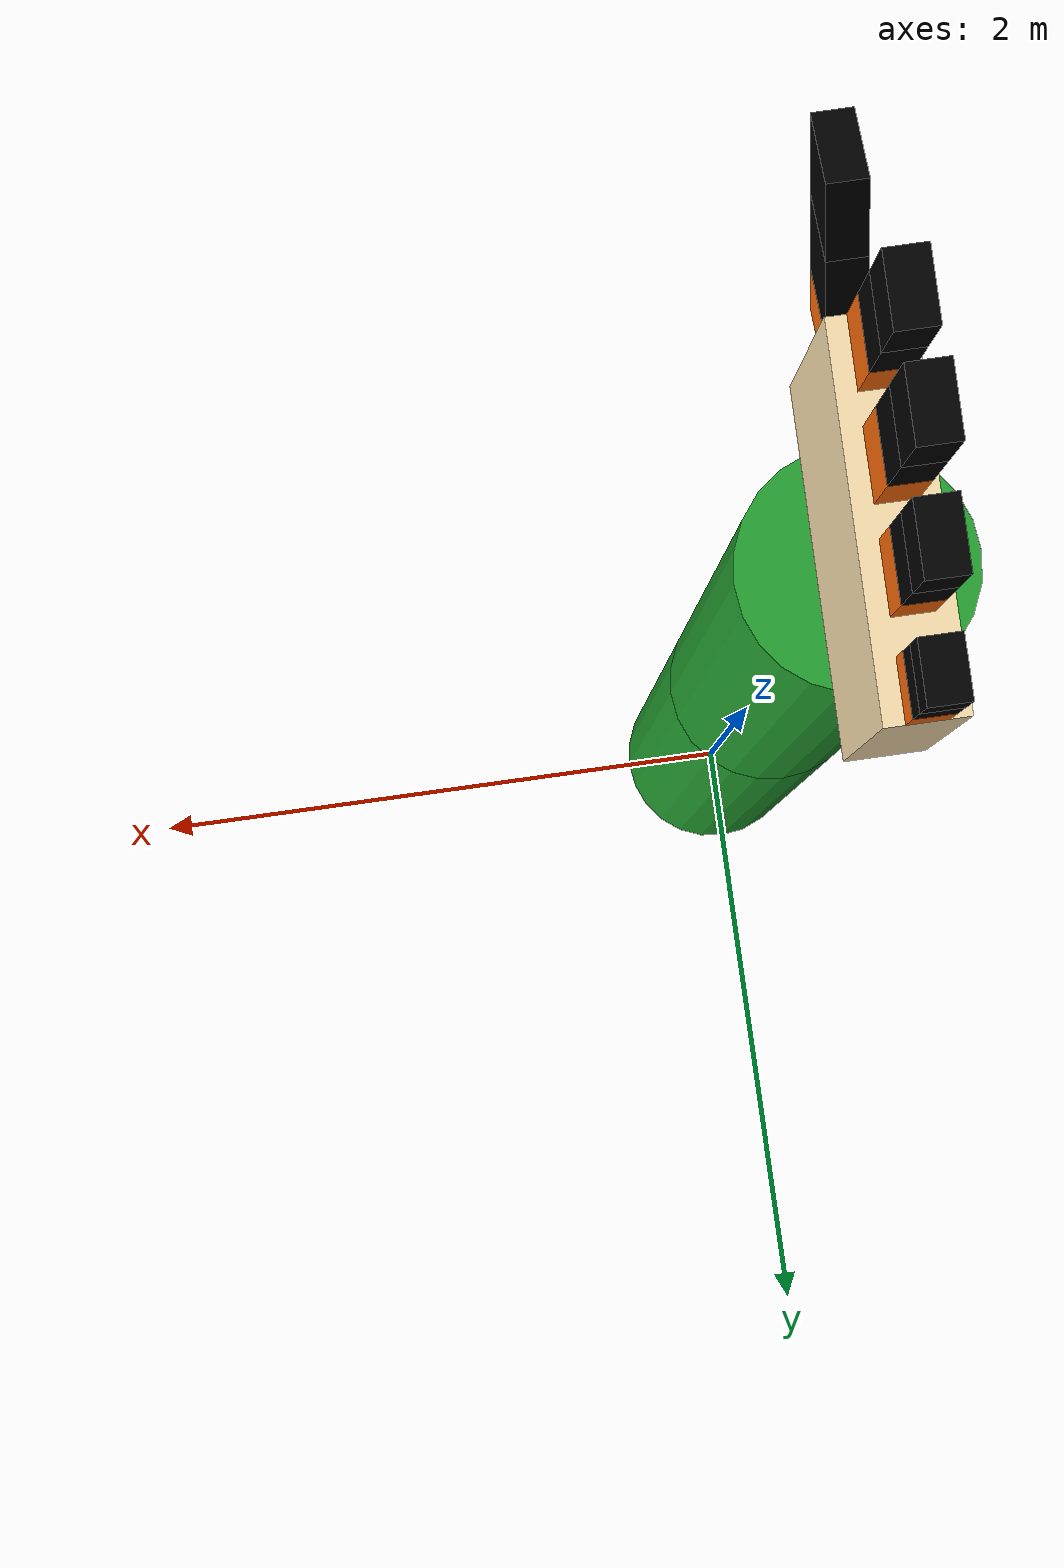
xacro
<?xml version="1.0"?>

<robot name="servo" xmlns:xacro="http://www.ros.org/wiki/xacro">

  <!-- Constants for robot dimensions -->
  <xacro:property name="PI" value="3.1415926535897931"/>
  <xacro:property name="mass_palm" value="0.2" /> <!-- arbitrary value for mass -->
  <xacro:property name="mass_hand" value="20" /> <!-- arbitrary value for mass -->
  <xacro:property name="radius" value="0.05" /> <!-- Radii of the cylinder-->
  <xacro:property name="length1" value="0.1" /> <!-- seg42 -->
  <xacro:property name="length2" value="1" /> <!-- Rotator -->
  <xacro:property name="width" value="0.1" /> <!-- width of the beam -->
  <xacro:property name="offset" value="0" /> <!-- width of the beam -->
  <xacro:property name="spacing" value="0.25" /> <!-- width of the beam -->
  <xacro:property name="leftmost" value="-0.2" /> <!-- leftmost y cordinate of palm -->
  <xacro:property name="imr_width" value="0.173" /> <!-- index middle ring width -->
  <xacro:property name="l_width" value="0.15" /> <!-- little width -->
  <xacro:property name="x_width" value="0.10" />
  <xacro:property name="hand_height" value="3" /> <!-- little width -->
  <xacro:property name="hand_radius" value="0.30" /> <!-- little width -->

  <xacro:include filename="$(find servo_description)/urdf/servo.gazebo" />
  <xacro:include filename="$(find servo_description)/urdf/materials.xacro" />

<!--======================= Right Hand =================================== -->
  <link name="Right_upper">
    <collision>
      <origin xyz="0 0 ${hand_height/2}" rpy="0 0 0"/>
      <geometry>
         <cylinder length="${hand_height}" radius="${hand_radius}"/>
      </geometry>
    </collision>

    <visual>
      <origin xyz="0 0 ${hand_height/2}" rpy="0 0 0"/>
      <geometry>
         <cylinder length="${hand_height}" radius="${hand_radius}"/>
      </geometry>
    </visual>

    <inertial>
      <origin xyz="0 0 ${hand_height/2}" rpy="0 0 0"/>
      <mass value="${mass_hand*1000}"/>
      <inertia
          ixx="${1/12*mass_hand*hand_height*hand_height}" ixy="0.0" ixz="0.0"
          iyy="${1/12*mass_hand*hand_height*hand_height}" iyz="0.0"
          izz="${mass_hand*radius*radius}"/>
    </inertial>
  </link>

  <joint name="Right_hinge" type="revolute">
    <parent link="Right_upper"/>
    <child link="Right_lower"/>
    <origin xyz="${hand_radius} 0 ${hand_height}" rpy="0 0 0"/>
    <axis xyz="0 1 0"/>
    <dynamics damping="0.9"/>
    <limit effort="1000.0" lower="0" upper="1.57" velocity="10"/>
  </joint>

  <link name="Right_lower">
     <collision>
      <origin xyz="${-hand_radius} 0 ${hand_height/2}" rpy="0 0 0"/>
      <geometry>
         <cylinder length="${hand_height}" radius="${hand_radius}"/>
      </geometry>
    </collision>

    <visual>
      <origin xyz="${-hand_radius} 0 ${hand_height/2}" rpy="0 0 0"/>
      <geometry>
         <cylinder length="${hand_height}" radius="${hand_radius}"/>
      </geometry>
    </visual>

    <inertial>
      <origin xyz="${-hand_radius} 0 ${hand_height/2}" rpy="0 0 0"/>
      <mass value="${mass_hand}"/>
      <inertia
          ixx="${1/12*mass_hand*hand_height*hand_height}" ixy="0.0" ixz="0.0"
          iyy="${1/12*mass_hand*hand_height*hand_height}" iyz="0.0"
          izz="${mass_hand*radius*radius}"/>
    </inertial>
  </link>

<!-- ===============3 axis PALM joint ======================================= -->

  <joint name="Right_palm_y" type="revolute">
    <parent link="Right_lower"/>
    <child link="Right_z_palmD"/>
    <origin xyz="${-hand_radius} ${-(leftmost+imr_width/2+spacing*3+l_width/2+leftmost)/2} ${hand_height}" rpy="0 0 0"/>
    <axis xyz="0 1 0"/>
    <dynamics damping="0.7"/>
    <limit effort="1000.0" lower="-1.57" upper="1.57" velocity="10"/>
  </joint>

  <link name="Right_z_palmD"> <!-- https://answers.ros.org/question/258420/ball-joint-in-urdf/ -->
    <inertial>
      <mass value="0.00025" />
      <inertia ixx="5.8083e-4" ixy="0" ixz="0" iyy="3.0833e-5" iyz="0" izz="5.9083e-4" />
    </inertial>
  </link>

  <joint name="Right_palm_z" type="revolute">
    <parent link="Right_z_palmD"/>
    <child link="Right_x_palmD"/>
    <axis xyz="0 0 1"/>
    <dynamics damping="0.7"/>
    <limit effort="1000.0" lower="-1.57" upper="1.57" velocity="10"/>
  </joint>

  <link name="Right_x_palmD">
    <inertial>
      <mass value="0.00025" />
      <inertia ixx="5.8083e-4" ixy="0" ixz="0" iyy="3.0833e-5" iyz="0" izz="5.9083e-4" />
    </inertial>
  </link>

  <joint name="Right_palm_x" type="revolute">
    <parent link="Right_x_palmD"/>
    <child link="Right_y_palmD"/>
    <axis xyz="1 0 0"/>
    <dynamics damping="0.7"/>
    <limit effort="1000.0" lower="-1.57" upper="1.57" velocity="10"/>
  </joint>

  <link name="Right_y_palmD">
    <inertial>
      <mass value="0.00025" />
      <inertia ixx="5.8083e-4" ixy="0" ixz="0" iyy="3.0833e-5" iyz="0" izz="5.9083e-4" />
    </inertial>
  </link>

  <joint name="Right_palm_d" type="fixed">
    <parent link="Right_y_palmD"/>
    <child link="Palm"/>
  </joint>

<!--========================PALM ========================================= -->
  <link name="Palm">
    <collision>
      <origin xyz="0 ${(leftmost+imr_width/2+spacing*3+l_width/2+leftmost)/2} 0.5" rpy="0 0 0"/>
      <geometry>
         <box size="${x_width*2} ${(leftmost+imr_width/2+spacing*3+l_width/2+leftmost)+0.4} 1"/>
      </geometry>
    </collision>

    <visual>
      <origin xyz="0 ${(leftmost+imr_width/2+spacing*3+l_width/2+leftmost)/2} 0.5" rpy="0 0 0"/>
      <geometry>
         <box size="${x_width*2} ${(leftmost+imr_width/2+spacing*3+l_width/2+leftmost)+0.4} 1"/>
      </geometry>
      <material name="skin"/>
    </visual>

    <inertial>
      <origin xyz="0 ${(leftmost+imr_width/2+spacing*3+l_width/2+leftmost)/2} 0.5" rpy="0 0 0"/>
      <mass value="${mass_palm}"/>
      <inertia
          ixx="${mass_palm / 12.0 * (length1*length1 + length1*length1)}" ixy="0.0" ixz="0.0"
          iyy="${mass_palm / 12.0 * (length1*length1 + length1*length1)}" iyz="0.0"
          izz="${mass_palm / 12.0 * (length1*length1 + length1*length1)}"/>
    </inertial>
  </link>

<!--========================PALM JOINTS ========================================= -->

  <joint name="jointGT" type="fixed">
    <parent link="Palm"/>
    <child link="segt1"/>
    <origin xyz="0 ${leftmost-0.05} 0.3" rpy="0.52 0 0"/>
  </joint>

  <joint name="jointG1" type="fixed">
    <parent link="Palm"/>
    <child link="seg11"/>
    <origin xyz="0 ${leftmost+imr_width/2} 1" rpy="0 0 0"/>
  </joint>

  <joint name="jointG2" type="fixed">
    <parent link="Palm"/>
    <child link="seg21"/>
    <origin xyz="0 ${leftmost+imr_width/2+spacing} 1" rpy="0 0 0"/>
  </joint>

  <joint name="jointG3" type="fixed">
    <parent link="Palm"/>
    <child link="seg31"/>
    <origin xyz="0 ${leftmost+imr_width/2+spacing*2} 1" rpy="0 0 0"/>
  </joint>

  <joint name="jointG4" type="fixed">
    <parent link="Palm"/>
    <child link="seg41"/>
    <origin xyz="0 ${leftmost+imr_width/2+spacing*3} 1" rpy="0 0 0"/>
  </joint>

<!--====================== THUMB ===============================-->

  <link name="segt1">
    <collision>
      <origin xyz="0 0 ${0.15/2}" rpy="0 0 0"/>
      <geometry>
         <box size="${x_width} 0.21 0.15"/>
      </geometry>
    </collision>

    <visual>
      <origin xyz="0 0 ${0.15/2}" rpy="0 0 0"/>
      <geometry>
         <box size="${x_width} 0.21 0.15"/>
      </geometry>
      <material name="orange"/>
    </visual>

    <inertial>
      <origin xyz="0 0 ${0.15/2}" rpy="0 0 0"/>
      <mass value="${mass_palm}"/>
      <inertia
    ixx="${mass_palm / 12.0 * (length1*length1 + length1*length1)}" ixy="0.0" ixz="0.0"
    iyy="${mass_palm / 12.0 * (length1*length1 + length1*length1)}" iyz="0.0"
    izz="${mass_palm / 12.0 * (length1*length1 + length1*length1)}"/>
    </inertial>
  </link>

  <joint name="jointt1" type="revolute">
    <parent link="segt1"/>
    <child link="segt2"/>
    <origin xyz="${x_width/2} 0 0.15" rpy="0 0 0"/>
    <axis xyz="0 1 0"/>
    <dynamics damping="0.7"/>
    <limit effort="1000.0" lower="0" upper="1.57" velocity="10"/>
  </joint>

  <link name="segt2">
    <collision>
      <origin xyz="${-x_width/2} 0 ${0.268/2}" rpy="0 0 0"/>
      <geometry>
         <box size="${x_width} 0.21 0.268"/>
      </geometry>
    </collision>

    <visual>
      <origin xyz="${-x_width/2} 0 ${0.268/2}" rpy="0 0 0"/>
      <geometry>
         <box size="${x_width} 0.21 0.268"/>
      </geometry>
      <material name="black"/>
    </visual>

    <inertial>
      <origin xyz="${-x_width/2} 0 ${0.268/2}" rpy="0 0 0"/>
      <mass value="${mass_palm}"/>
      <inertia
    ixx="${mass_palm / 12.0 * (width*width + width*width)}" ixy="0.0" ixz="0.0"
    iyy="${mass_palm / 12.0 * (length2*length2 + width*width)}" iyz="0.0"
    izz="${mass_palm / 12.0 * (width*width + length2*length2)}"/>
    </inertial>
  </link>

  <joint name="jointt2" type="revolute">
    <parent link="segt2"/>
    <child link="segt3"/>
    <origin xyz="0 0 ${0.268}" rpy="0 0 0"/>
    <axis xyz="0 1 0"/>
    <dynamics damping="0.7"/>
    <limit effort="1000.0" lower="0" upper="1.57" velocity="10"/>
  </joint>

  <link name="segt3">
    <collision>
      <origin xyz="${-x_width/2} 0 ${0.268/2}" rpy="0 0 0"/>
      <geometry>
         <box size="${x_width} 0.21 0.268"/>
      </geometry>
    </collision>

    <visual>
      <origin xyz="${-x_width/2} 0 ${0.268/2}" rpy="0 0 0"/>
      <geometry>
         <box size="${x_width} 0.21 0.268"/>
      </geometry>
      <material name="black"/>
    </visual>

    <inertial>
      <origin xyz="${-x_width/2} 0 ${0.268/2}" rpy="0 0 0"/>
      <mass value="${mass_palm}"/>
      <inertia
    ixx="${mass_palm / 12.0 * (width*width + width*width)}" ixy="0.0" ixz="0.0"
    iyy="${mass_palm / 12.0 * (length2*length2 + width*width)}" iyz="0.0"
    izz="${mass_palm / 12.0 * (width*width + length2*length2)}"/>
    </inertial>
  </link>

<!--====================== INDEX FINGER ===============================-->

  <link name="seg11">
    <collision>
      <origin xyz="0 0 ${0.268/2}" rpy="0 0 0"/>
      <geometry>
	       <box size="${x_width} ${imr_width} 0.268"/>
      </geometry>
    </collision>

    <visual>
      <origin xyz="0 0 ${0.268/2}" rpy="0 0 0"/>
      <geometry>
	       <box size="${x_width} ${imr_width} 0.268"/>
      </geometry>
      <material name="orange"/>
    </visual>

    <inertial>
      <origin xyz="0 0 ${0.268/2}" rpy="0 0 0"/>
      <mass value="${mass_palm}"/>
      <inertia
	  ixx="${mass_palm / 12.0 * (length1*length1 + length1*length1)}" ixy="0.0" ixz="0.0"
	  iyy="${mass_palm / 12.0 * (length1*length1 + length1*length1)}" iyz="0.0"
	  izz="${mass_palm / 12.0 * (length1*length1 + length1*length1)}"/>
    </inertial>
  </link>

  <joint name="joint11" type="revolute">
    <parent link="seg11"/>
    <child link="seg12"/>
    <origin xyz="${x_width/2} 0 0.268" rpy="0 0 0"/>
    <axis xyz="0 1 0"/>
    <dynamics damping="0.7"/>
    <limit effort="1000.0" lower="0" upper="1.57" velocity="10"/>
  </joint>

  <link name="seg12">
    <collision>
      <origin xyz="${-x_width/2} 0 ${0.268/2}" rpy="0 0 0"/>
      <geometry>
	       <box size="${x_width} ${imr_width} 0.268"/>
      </geometry>
    </collision>

    <visual>
      <origin xyz="${-x_width/2} 0 ${0.268/2}" rpy="0 0 0"/>
      <geometry>
	       <box size="${x_width} ${imr_width} 0.268"/>
      </geometry>
      <material name="black"/>
    </visual>

    <inertial>
      <origin xyz="${-x_width/2} 0 ${0.268/2}" rpy="0 0 0"/>
      <mass value="${mass_palm}"/>
      <inertia
	  ixx="${mass_palm / 12.0 * (width*width + width*width)}" ixy="0.0" ixz="0.0"
	  iyy="${mass_palm / 12.0 * (length2*length2 + width*width)}" iyz="0.0"
	  izz="${mass_palm / 12.0 * (width*width + length2*length2)}"/>
    </inertial>
  </link>

  <joint name="joint12" type="revolute">
    <parent link="seg12"/>
    <child link="seg13"/>
    <origin xyz="0 0 ${0.268}" rpy="0 0 0"/>
    <axis xyz="0 1 0"/>
    <dynamics damping="0.7"/>
    <limit effort="1000.0" lower="0" upper="1.57" velocity="10"/>
  </joint>

  <link name="seg13">
    <collision>
      <origin xyz="${-x_width/2} 0 ${0.268/2}" rpy="0 0 0"/>
      <geometry>
         <box size="${x_width} ${imr_width} 0.268"/>
      </geometry>
    </collision>

    <visual>
      <origin xyz="${-x_width/2} 0 ${0.268/2}" rpy="0 0 0"/>
      <geometry>
         <box size="${x_width} ${imr_width} 0.268"/>
      </geometry>
      <material name="black"/>
    </visual>

    <inertial>
      <origin xyz="${-x_width/2} 0 ${0.268/2}" rpy="0 0 0"/>
      <mass value="${mass_palm}"/>
      <inertia
    ixx="${mass_palm / 12.0 * (width*width + width*width)}" ixy="0.0" ixz="0.0"
    iyy="${mass_palm / 12.0 * (length2*length2 + width*width)}" iyz="0.0"
    izz="${mass_palm / 12.0 * (width*width + length2*length2)}"/>
    </inertial>
  </link>

<!--====================== MIDDLE FINGER ===============================-->

  <link name="seg21">
    <collision>
      <origin xyz="0 0 ${0.3/2}" rpy="0 0 0"/>
      <geometry>
         <box size="${x_width} ${imr_width} 0.2"/>
      </geometry>
    </collision>

    <visual>
      <origin xyz="0 0 ${0.3/2}" rpy="0 0 0"/>
      <geometry>
         <box size="${x_width} ${imr_width} 0.3"/>
      </geometry>
      <material name="orange"/>
    </visual>

    <inertial>
      <origin xyz="0 0 ${0.3/2}" rpy="0 0 0"/>
      <mass value="${mass_palm}"/>
      <inertia
    ixx="${mass_palm / 12.0 * (length1*length1 + length1*length1)}" ixy="0.0" ixz="0.0"
    iyy="${mass_palm / 12.0 * (length1*length1 + length1*length1)}" iyz="0.0"
    izz="${mass_palm / 12.0 * (length1*length1 + length1*length1)}"/>
    </inertial>
  </link>

  <joint name="joint21" type="revolute">
    <parent link="seg21"/>
    <child link="seg22"/>
    <origin xyz="${x_width/2} 0.0 0.3" rpy="0 0 0"/>
    <axis xyz="0 1 0"/>
    <dynamics damping="0.7"/>
    <limit effort="1000.0" lower="0" upper="1.57" velocity="10"/>
  </joint>

  <link name="seg22">
    <collision>
      <origin xyz="${-x_width/2} 0 ${0.3/2}" rpy="0 0 0"/>
      <geometry>
         <box size="${x_width} ${imr_width} 0.3"/>
      </geometry>
    </collision>

    <visual>
      <origin xyz="${-x_width/2} 0 ${0.3/2}" rpy="0 0 0"/>
      <geometry>
         <box size="${x_width} ${imr_width} 0.3"/>
      </geometry>
      <material name="black"/>
    </visual>

    <inertial>
      <origin xyz="${-x_width/2} 0 ${0.3/2}" rpy="0 0 0"/>
      <mass value="${mass_palm}"/>
      <inertia
    ixx="${mass_palm / 12.0 * (width*width + width*width)}" ixy="0.0" ixz="0.0"
    iyy="${mass_palm / 12.0 * (length2*length2 + width*width)}" iyz="0.0"
    izz="${mass_palm / 12.0 * (width*width + length2*length2)}"/>
    </inertial>
  </link>

  <joint name="joint22" type="revolute">
    <parent link="seg22"/>
    <child link="seg23"/>
    <origin xyz="0 0 0.3" rpy="0 0 0"/>
    <axis xyz="0 1 0"/>
    <dynamics damping="0.7"/>
    <limit effort="1000.0" lower="0" upper="1.57" velocity="10"/>
  </joint>

  <link name="seg23">
    <collision>
      <origin xyz="${-x_width/2} 0 ${0.3/2}" rpy="0 0 0"/>
      <geometry>
         <box size="${x_width} ${imr_width} 0.3"/>
      </geometry>
    </collision>

    <visual>
      <origin xyz="${-x_width/2} 0 ${0.3/2}" rpy="0 0 0"/>
      <geometry>
         <box size="${x_width} ${imr_width} 0.3"/>
      </geometry>
      <material name="black"/>
    </visual>

    <inertial>
      <origin xyz="${-x_width/2} 0 ${0.3/2}" rpy="0 0 0"/>
      <mass value="${mass_palm}"/>
      <inertia
    ixx="${mass_palm / 12.0 * (width*width + width*width)}" ixy="0.0" ixz="0.0"
    iyy="${mass_palm / 12.0 * (length2*length2 + width*width)}" iyz="0.0"
    izz="${mass_palm / 12.0 * (width*width + length2*length2)}"/>
    </inertial>
  </link>

<!--====================== RING FINGER ===============================-->

  <link name="seg31">
    <collision>
      <origin xyz="0 0 ${0.24/2}" rpy="0 0 0"/>
      <geometry>
         <box size="${x_width} ${imr_width} 0.24"/>
      </geometry>
    </collision>

    <visual>
      <origin xyz="0 0 ${0.24/2}" rpy="0 0 0"/>
      <geometry>
         <box size="${x_width} ${imr_width} 0.24"/>
      </geometry>
      <material name="orange"/>
    </visual>

    <inertial>
      <origin xyz="0 0 ${0.24/2}" rpy="0 0 0"/>
      <mass value="${mass_palm}"/>
      <inertia
    ixx="${mass_palm / 12.0 * (length1*length1 + length1*length1)}" ixy="0.0" ixz="0.0"
    iyy="${mass_palm / 12.0 * (length1*length1 + length1*length1)}" iyz="0.0"
    izz="${mass_palm / 12.0 * (length1*length1 + length1*length1)}"/>
    </inertial>
  </link>

  <joint name="joint31" type="revolute">
    <parent link="seg31"/>
    <child link="seg32"/>
    <origin xyz="${x_width/2} 0.0 0.24" rpy="0 0 0"/>
    <axis xyz="0 1 0"/>
    <dynamics damping="0.7"/>
    <limit effort="1000.0" lower="0" upper="1.57" velocity="10"/>
  </joint>

  <link name="seg32">
    <collision>
      <origin xyz="${-x_width/2} 0 ${0.24/2}" rpy="0 0 0"/>
      <geometry>
         <box size="${x_width} ${imr_width} 0.24"/>
      </geometry>
    </collision>

    <visual>
      <origin xyz="${-x_width/2} 0 ${0.24/2}" rpy="0 0 0"/>
      <geometry>
         <box size="${x_width} ${imr_width} 0.24"/>
      </geometry>
      <material name="black"/>
    </visual>

    <inertial>
      <origin xyz="${-x_width/2} 0 ${0.24/2}" rpy="0 0 0"/>
      <mass value="${mass_palm}"/>
      <inertia
    ixx="${mass_palm / 12.0 * (width*width + width*width)}" ixy="0.0" ixz="0.0"
    iyy="${mass_palm / 12.0 * (length2*length2 + width*width)}" iyz="0.0"
    izz="${mass_palm / 12.0 * (width*width + length2*length2)}"/>
    </inertial>
  </link>

  <joint name="joint32" type="revolute">
    <parent link="seg32"/>
    <child link="seg33"/>
    <origin xyz="0 0 0.24" rpy="0 0 0"/>
    <axis xyz="0 1 0"/>
    <dynamics damping="0.7"/>
    <limit effort="1000.0" lower="0" upper="1.57" velocity="10"/>
  </joint>

  <link name="seg33">
    <collision>
      <origin xyz="${-x_width/2} 0 ${0.24/2}" rpy="0 0 0"/>
      <geometry>
         <box size="${x_width} ${imr_width} 0.24"/>
      </geometry>
    </collision>

    <visual>
      <origin xyz="${-x_width/2} 0 ${0.24/2}" rpy="0 0 0"/>
      <geometry>
         <box size="${x_width} ${imr_width} 0.24"/>
      </geometry>
      <material name="black"/>
    </visual>

    <inertial>
      <origin xyz="${-x_width/2} 0 ${0.24/2}" rpy="0 0 0"/>
      <mass value="${mass_palm}"/>
      <inertia
    ixx="${mass_palm / 12.0 * (width*width + width*width)}" ixy="0.0" ixz="0.0"
    iyy="${mass_palm / 12.0 * (length2*length2 + width*width)}" iyz="0.0"
    izz="${mass_palm / 12.0 * (width*width + length2*length2)}"/>
    </inertial>
  </link>

<!--====================== LITTLE FINGER ===============================-->

  <link name="seg41">
    <collision>
      <origin xyz="0 0 ${0.15/2}" rpy="0 0 0"/>
      <geometry>
         <box size="${x_width} ${l_width} 0.15"/>
      </geometry>
    </collision>

    <visual>
      <origin xyz="0 0 ${0.15/2}" rpy="0 0 0"/>
      <geometry>
         <box size="${x_width} ${l_width} 0.15"/>
      </geometry>
      <material name="orange"/>
    </visual>

    <inertial>
      <origin xyz="0 0 ${0.15/2}" rpy="0 0 0"/>
      <mass value="${mass_palm}"/>
      <inertia
    ixx="${mass_palm / 12.0 * (length1*length1 + length1*length1)}" ixy="0.0" ixz="0.0"
    iyy="${mass_palm / 12.0 * (length1*length1 + length1*length1)}" iyz="0.0"
    izz="${mass_palm / 12.0 * (length1*length1 + length1*length1)}"/>
    </inertial>
  </link>

  <joint name="joint41" type="revolute">
    <parent link="seg41"/>
    <child link="seg42"/>
    <origin xyz="${x_width/2} 0.0 0.15" rpy="0 0 0"/>
    <axis xyz="0 1 0"/>
    <dynamics damping="0.7"/>
    <limit effort="1000.0" lower="0" upper="1.57" velocity="10"/>
  </joint>

  <link name="seg42">
    <collision>
      <origin xyz="${-x_width/2} 0 ${0.15/2}" rpy="0 0 0"/>
      <geometry>
         <box size="${x_width} ${l_width} 0.15"/>
      </geometry>
    </collision>

    <visual>
      <origin xyz="${-x_width/2} 0 ${0.15/2}" rpy="0 0 0"/>
      <geometry>
         <box size="${x_width} ${l_width} 0.15"/>
      </geometry>
      <material name="black"/>
    </visual>

    <inertial>
      <origin xyz="${-x_width/2} 0 ${0.15/2}" rpy="0 0 0"/>
      <mass value="${mass_palm}"/>
      <inertia
    ixx="${mass_palm / 12.0 * (width*width + width*width)}" ixy="0.0" ixz="0.0"
    iyy="${mass_palm / 12.0 * (length2*length2 + width*width)}" iyz="0.0"
    izz="${mass_palm / 12.0 * (width*width + length2*length2)}"/>
    </inertial>
  </link>

  <joint name="joint42" type="revolute">
    <parent link="seg42"/>
    <child link="seg43"/>
    <origin xyz="0 0 0.15" rpy="0 0 0"/>
    <axis xyz="0 1 0"/>
    <dynamics damping="0.7"/>
    <limit effort="1000.0" lower="0" upper="1.57" velocity="10"/>
  </joint>

  <link name="seg43">
    <collision>
      <origin xyz="${-x_width/2} 0 ${0.15/2}" rpy="0 0 0"/>
      <geometry>
         <box size="${x_width} ${l_width} 0.15"/>
      </geometry>
    </collision>

    <visual>
      <origin xyz="${-x_width/2} 0 ${0.15/2}" rpy="0 0 0"/>
      <geometry>
         <box size="${x_width} ${l_width} 0.15"/>
      </geometry>
      <material name="black"/>
    </visual>

    <inertial>
      <origin xyz="${-x_width/2} 0 ${0.15/2}" rpy="0 0 0"/>
      <mass value="${mass_palm}"/>
      <inertia
    ixx="${mass_palm / 12.0 * (width*width + width*width)}" ixy="0.0" ixz="0.0"
    iyy="${mass_palm / 12.0 * (length2*length2 + width*width)}" iyz="0.0"
    izz="${mass_palm / 12.0 * (width*width + length2*length2)}"/>
    </inertial>
  </link>

<!-- ==================TRANSMISSION LINE =========================== -->
  <transmission name="trant1">
    <type>transmission_interface/SimpleTransmission</type>
    <joint name="jointt1">
      <hardwareInterface>hardware_interface/EffortJointInterface</hardwareInterface>
    </joint>
    <actuator name="motort1">
      <hardwareInterface>hardware_interface/EffortJointInterface</hardwareInterface>
      <mechanicalReduction>1</mechanicalReduction>
    </actuator>
  </transmission>

  <transmission name="trant2">
    <type>transmission_interface/SimpleTransmission</type>
    <joint name="jointt2">
      <hardwareInterface>hardware_interface/EffortJointInterface</hardwareInterface>
    </joint>
    <actuator name="motort2">
      <hardwareInterface>hardware_interface/EffortJointInterface</hardwareInterface>
      <mechanicalReduction>1</mechanicalReduction>
    </actuator>
  </transmission>

  <transmission name="tran11">
    <type>transmission_interface/SimpleTransmission</type>
    <joint name="joint11">
      <hardwareInterface>hardware_interface/EffortJointInterface</hardwareInterface>
    </joint>
    <actuator name="motor11">
      <hardwareInterface>hardware_interface/EffortJointInterface</hardwareInterface>
      <mechanicalReduction>1</mechanicalReduction>
    </actuator>
  </transmission>

  <transmission name="tran12">
    <type>transmission_interface/SimpleTransmission</type>
    <joint name="joint12">
      <hardwareInterface>hardware_interface/EffortJointInterface</hardwareInterface>
    </joint>
    <actuator name="motor12">
      <hardwareInterface>hardware_interface/EffortJointInterface</hardwareInterface>
      <mechanicalReduction>1</mechanicalReduction>
    </actuator>
  </transmission>

  <transmission name="tran21">
    <type>transmission_interface/SimpleTransmission</type>
    <joint name="joint21">
      <hardwareInterface>hardware_interface/EffortJointInterface</hardwareInterface>
    </joint>
    <actuator name="motor21">
      <hardwareInterface>hardware_interface/EffortJointInterface</hardwareInterface>
      <mechanicalReduction>1</mechanicalReduction>
    </actuator>
  </transmission>

  <transmission name="tran22">
    <type>transmission_interface/SimpleTransmission</type>
    <joint name="joint22">
      <hardwareInterface>hardware_interface/EffortJointInterface</hardwareInterface>
    </joint>
    <actuator name="motor22">
      <hardwareInterface>hardware_interface/EffortJointInterface</hardwareInterface>
      <mechanicalReduction>1</mechanicalReduction>
    </actuator>
  </transmission>

  <transmission name="tran31">
    <type>transmission_interface/SimpleTransmission</type>
    <joint name="joint31">
      <hardwareInterface>hardware_interface/EffortJointInterface</hardwareInterface>
    </joint>
    <actuator name="motor31">
      <hardwareInterface>hardware_interface/EffortJointInterface</hardwareInterface>
      <mechanicalReduction>1</mechanicalReduction>
    </actuator>
  </transmission>

  <transmission name="tran32">
    <type>transmission_interface/SimpleTransmission</type>
    <joint name="joint32">
      <hardwareInterface>hardware_interface/EffortJointInterface</hardwareInterface>
    </joint>
    <actuator name="motor32">
      <hardwareInterface>hardware_interface/EffortJointInterface</hardwareInterface>
      <mechanicalReduction>1</mechanicalReduction>
    </actuator>
  </transmission>

  <transmission name="tran41">
    <type>transmission_interface/SimpleTransmission</type>
    <joint name="joint41">
      <hardwareInterface>hardware_interface/EffortJointInterface</hardwareInterface>
    </joint>
    <actuator name="motor41">
      <hardwareInterface>hardware_interface/EffortJointInterface</hardwareInterface>
      <mechanicalReduction>1</mechanicalReduction>
    </actuator>
  </transmission>

  <transmission name="tran42">
    <type>transmission_interface/SimpleTransmission</type>
    <joint name="joint42">
      <hardwareInterface>hardware_interface/EffortJointInterface</hardwareInterface>
    </joint>
    <actuator name="motor42">
      <hardwareInterface>hardware_interface/EffortJointInterface</hardwareInterface>
      <mechanicalReduction>1</mechanicalReduction>
    </actuator>
  </transmission>

  <transmission name="tran_Right_hinge">
    <type>transmission_interface/SimpleTransmission</type>
    <joint name="Right_hinge">
      <hardwareInterface>hardware_interface/EffortJointInterface</hardwareInterface>
    </joint>
    <actuator name="motor_Right_hinge">
      <hardwareInterface>hardware_interface/EffortJointInterface</hardwareInterface>
      <mechanicalReduction>1</mechanicalReduction>
    </actuator>
  </transmission>

  <transmission name="tran_Right_palm_x">
    <type>transmission_interface/SimpleTransmission</type>
    <joint name="Right_palm_x">
      <hardwareInterface>hardware_interface/EffortJointInterface</hardwareInterface>
    </joint>
    <actuator name="motor_Right_palm_x">
      <hardwareInterface>hardware_interface/EffortJointInterface</hardwareInterface>
      <mechanicalReduction>1</mechanicalReduction>
    </actuator>
  </transmission>

  <transmission name="tran_Right_palm_z">
    <type>transmission_interface/SimpleTransmission</type>
    <joint name="Right_palm_z">
      <hardwareInterface>hardware_interface/EffortJointInterface</hardwareInterface>
    </joint>
    <actuator name="motor_Right_palm_z">
      <hardwareInterface>hardware_interface/EffortJointInterface</hardwareInterface>
      <mechanicalReduction>1</mechanicalReduction>
    </actuator>
  </transmission>
  <transmission name="tran_Right_palm_y">
    <type>transmission_interface/SimpleTransmission</type>
    <joint name="Right_palm_y">
      <hardwareInterface>hardware_interface/EffortJointInterface</hardwareInterface>
    </joint>
    <actuator name="motor_Right_palm_y">
      <hardwareInterface>hardware_interface/EffortJointInterface</hardwareInterface>
      <mechanicalReduction>1</mechanicalReduction>
    </actuator>
  </transmission>

</robot>

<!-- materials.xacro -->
<robot>

  <material name="black">
    <color rgba="0.0 0.0 0.0 1.0"/>
  </material>

  <material name="blue">
    <color rgba="0.0 0.0 0.8 1.0"/>
  </material>

  <material name="green">
    <color rgba="0.0 0.8 0.0 1.0"/>
  </material>

  <material name="grey">
    <color rgba="0.2 0.2 0.2 1.0"/>
  </material>

  <material name="orange">
    <color rgba="${255/255} ${108/255} ${10/255} 1.0"/>
  </material>

  <material name="brown">
    <color rgba="${222/255} ${207/255} ${195/255} 1.0"/>
  </material>

  <material name="red">
    <color rgba="0.8 0.0 0.0 1.0"/>
  </material>

  <material name="white">
    <color rgba="1.0 1.0 1.0 1.0"/>
  </material>

  <material name="skin">
    <color rgba="${255/255} ${229/255} ${178/255} 1.0"/>
  </material>

</robot>
